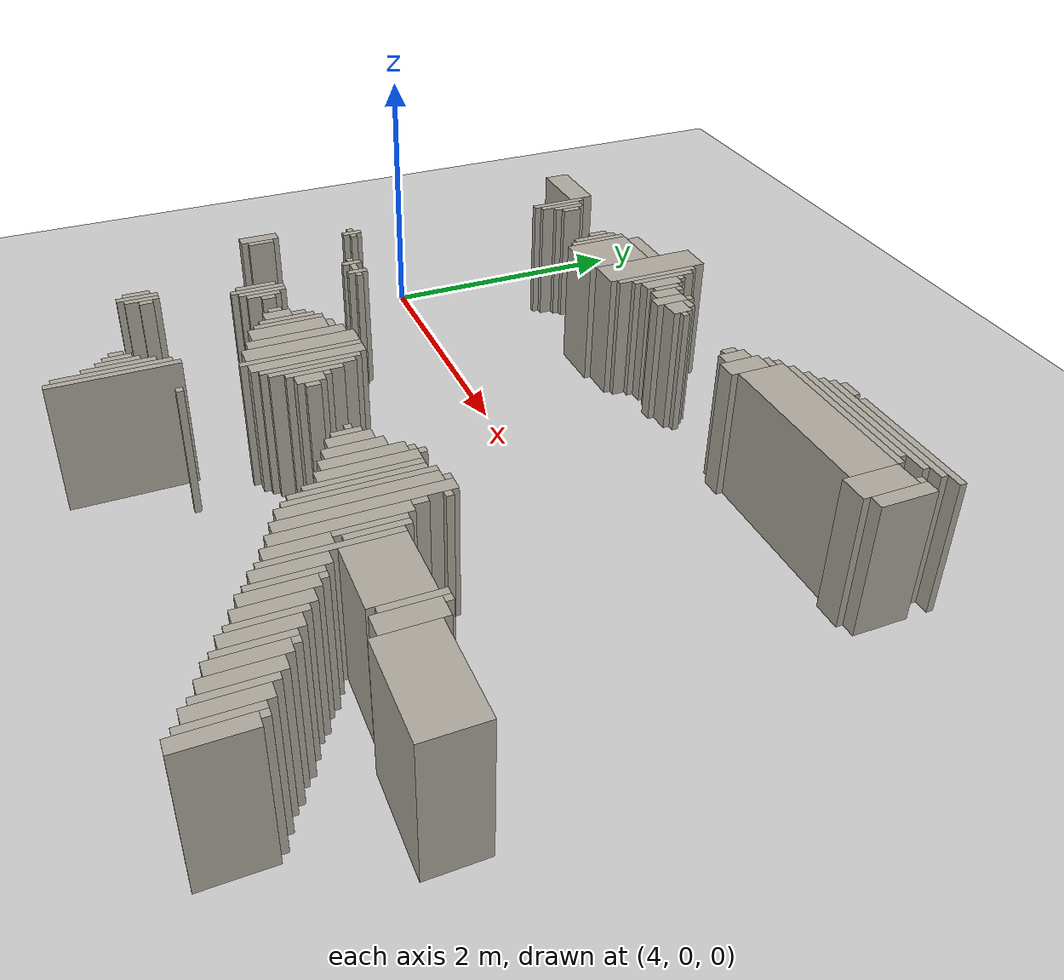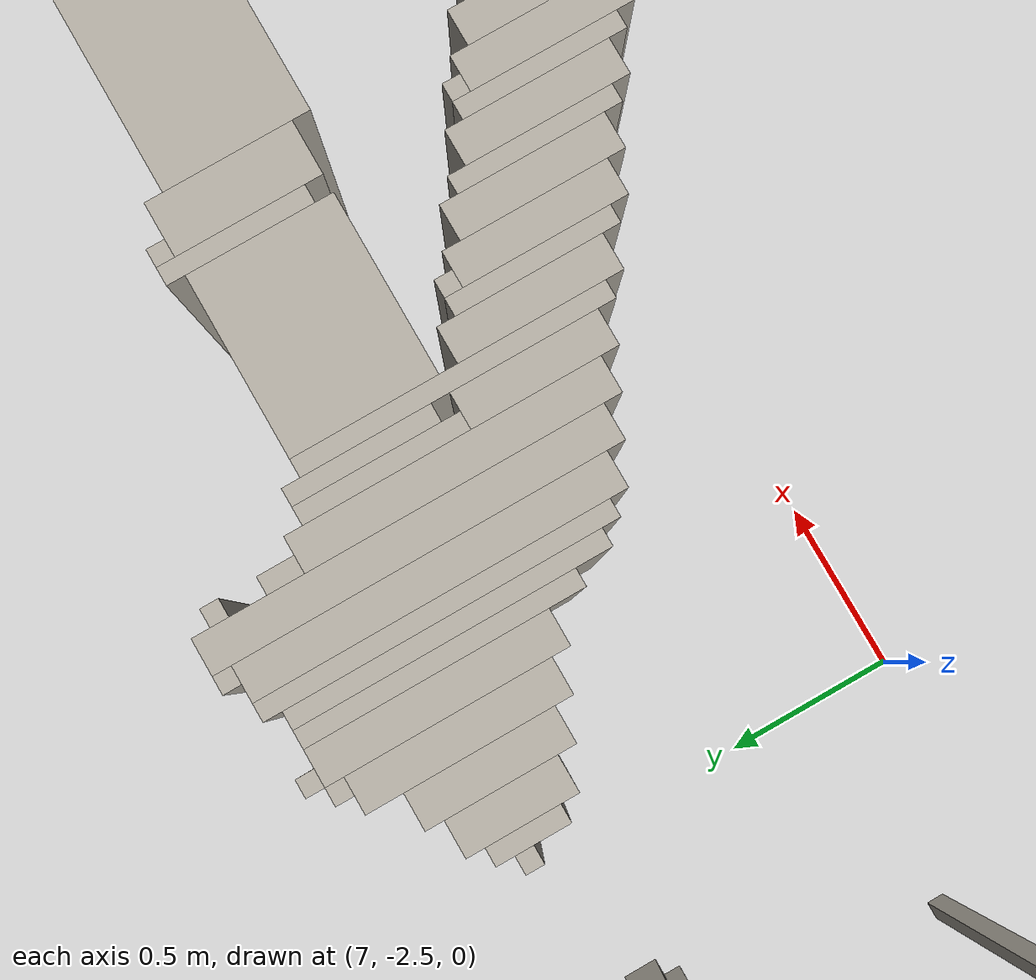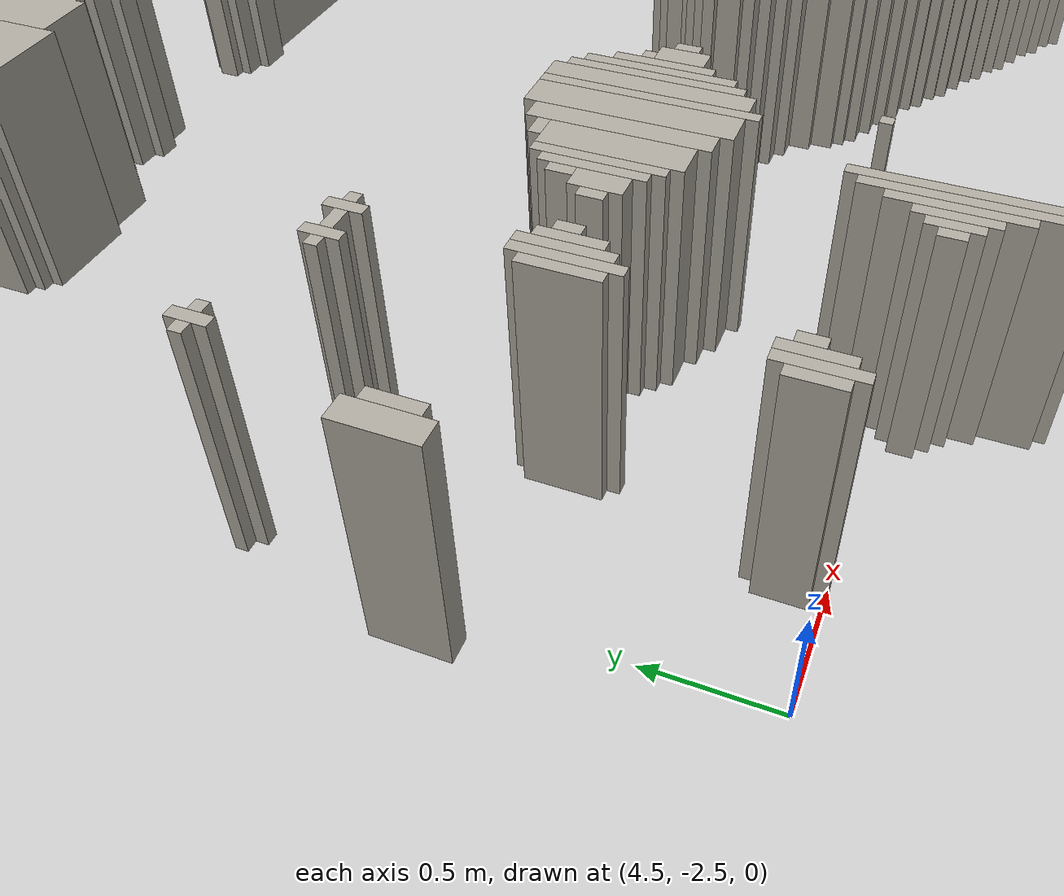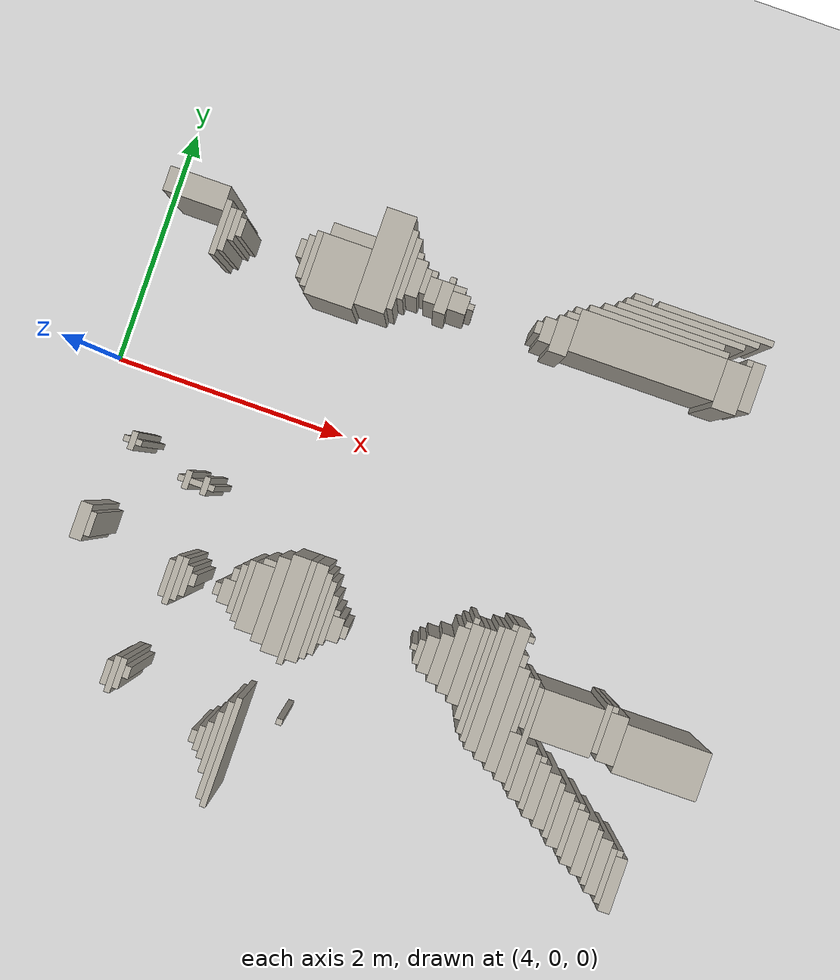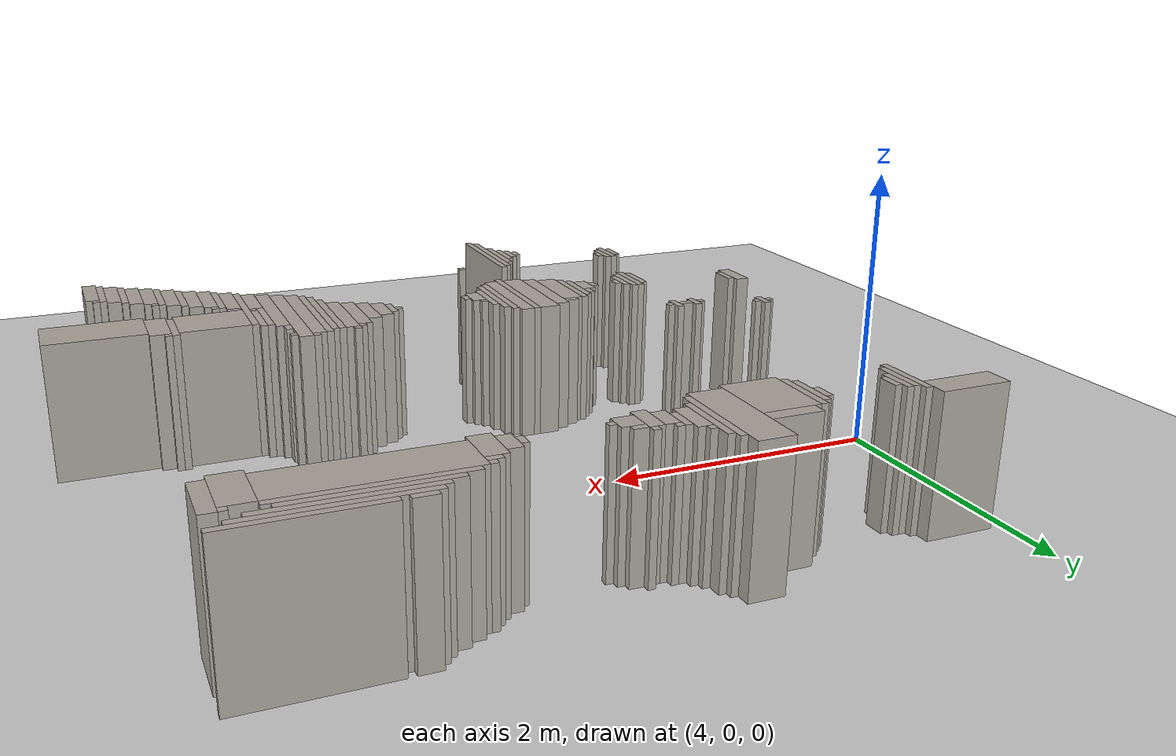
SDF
<sdf version="1.6">
 <world name="fr079_office">
  <include><uri>model://sun</uri></include>
  <include><uri>model://ground_plane</uri></include>
  <model name="fr079_office_walls">
   <static>true</static>
   <link name="w1134">
    <pose>5.977 -2.656 0.500 0 0 0</pose>
    <collision name="c"><geometry><box><size>0.050 0.900 1.000</size></box></geometry></collision>
    <visual name="v">
     <geometry><box><size>0.050 0.900 1.000</size></box></geometry>
     <material><ambient>0.68 0.66 0.62 1</ambient><diffuse>0.68 0.66 0.62 1</diffuse></material>
    </visual>
   </link>
   <link name="w1142">
    <pose>5.927 -2.656 0.500 0 0 0</pose>
    <collision name="c"><geometry><box><size>0.050 0.800 1.000</size></box></geometry></collision>
    <visual name="v">
     <geometry><box><size>0.050 0.800 1.000</size></box></geometry>
     <material><ambient>0.68 0.66 0.62 1</ambient><diffuse>0.68 0.66 0.62 1</diffuse></material>
    </visual>
   </link>
   <link name="w1194">
    <pose>5.877 -2.606 0.500 0 0 0</pose>
    <collision name="c"><geometry><box><size>0.050 0.500 1.000</size></box></geometry></collision>
    <visual name="v">
     <geometry><box><size>0.050 0.500 1.000</size></box></geometry>
     <material><ambient>0.68 0.66 0.62 1</ambient><diffuse>0.68 0.66 0.62 1</diffuse></material>
    </visual>
   </link>
   <link name="w1195">
    <pose>9.202 -2.631 0.500 0 0 0</pose>
    <collision name="c"><geometry><box><size>0.100 0.450 1.000</size></box></geometry></collision>
    <visual name="v">
     <geometry><box><size>0.100 0.450 1.000</size></box></geometry>
     <material><ambient>0.68 0.66 0.62 1</ambient><diffuse>0.68 0.66 0.62 1</diffuse></material>
    </visual>
   </link>
   <link name="w1204">
    <pose>9.127 -2.581 0.500 0 0 0</pose>
    <collision name="c"><geometry><box><size>0.050 0.450 1.000</size></box></geometry></collision>
    <visual name="v">
     <geometry><box><size>0.050 0.450 1.000</size></box></geometry>
     <material><ambient>0.68 0.66 0.62 1</ambient><diffuse>0.68 0.66 0.62 1</diffuse></material>
    </visual>
   </link>
   <link name="w1211">
    <pose>5.827 -2.606 0.500 0 0 0</pose>
    <collision name="c"><geometry><box><size>0.050 0.300 1.000</size></box></geometry></collision>
    <visual name="v">
     <geometry><box><size>0.050 0.300 1.000</size></box></geometry>
     <material><ambient>0.68 0.66 0.62 1</ambient><diffuse>0.68 0.66 0.62 1</diffuse></material>
    </visual>
   </link>
   <link name="w1212">
    <pose>9.052 -2.531 0.500 0 0 0</pose>
    <collision name="c"><geometry><box><size>0.100 0.450 1.000</size></box></geometry></collision>
    <visual name="v">
     <geometry><box><size>0.100 0.450 1.000</size></box></geometry>
     <material><ambient>0.68 0.66 0.62 1</ambient><diffuse>0.68 0.66 0.62 1</diffuse></material>
    </visual>
   </link>
   <link name="w1225">
    <pose>5.777 -2.606 0.500 0 0 0</pose>
    <collision name="c"><geometry><box><size>0.050 0.200 1.000</size></box></geometry></collision>
    <visual name="v">
     <geometry><box><size>0.050 0.200 1.000</size></box></geometry>
     <material><ambient>0.68 0.66 0.62 1</ambient><diffuse>0.68 0.66 0.62 1</diffuse></material>
    </visual>
   </link>
   <link name="w1226">
    <pose>8.977 -2.481 0.500 0 0 0</pose>
    <collision name="c"><geometry><box><size>0.050 0.450 1.000</size></box></geometry></collision>
    <visual name="v">
     <geometry><box><size>0.050 0.450 1.000</size></box></geometry>
     <material><ambient>0.68 0.66 0.62 1</ambient><diffuse>0.68 0.66 0.62 1</diffuse></material>
    </visual>
   </link>
   <link name="w1237">
    <pose>5.727 -2.606 0.500 0 0 0</pose>
    <collision name="c"><geometry><box><size>0.050 0.100 1.000</size></box></geometry></collision>
    <visual name="v">
     <geometry><box><size>0.050 0.100 1.000</size></box></geometry>
     <material><ambient>0.68 0.66 0.62 1</ambient><diffuse>0.68 0.66 0.62 1</diffuse></material>
    </visual>
   </link>
   <link name="w1238">
    <pose>8.902 -2.431 0.500 0 0 0</pose>
    <collision name="c"><geometry><box><size>0.100 0.450 1.000</size></box></geometry></collision>
    <visual name="v">
     <geometry><box><size>0.100 0.450 1.000</size></box></geometry>
     <material><ambient>0.68 0.66 0.62 1</ambient><diffuse>0.68 0.66 0.62 1</diffuse></material>
    </visual>
   </link>
   <link name="w1256">
    <pose>8.802 -2.381 0.500 0 0 0</pose>
    <collision name="c"><geometry><box><size>0.100 0.450 1.000</size></box></geometry></collision>
    <visual name="v">
     <geometry><box><size>0.100 0.450 1.000</size></box></geometry>
     <material><ambient>0.68 0.66 0.62 1</ambient><diffuse>0.68 0.66 0.62 1</diffuse></material>
    </visual>
   </link>
   <link name="w1275">
    <pose>8.727 -2.331 0.500 0 0 0</pose>
    <collision name="c"><geometry><box><size>0.050 0.450 1.000</size></box></geometry></collision>
    <visual name="v">
     <geometry><box><size>0.050 0.450 1.000</size></box></geometry>
     <material><ambient>0.68 0.66 0.62 1</ambient><diffuse>0.68 0.66 0.62 1</diffuse></material>
    </visual>
   </link>
   <link name="w1287">
    <pose>4.977 -2.356 0.500 0 0 0</pose>
    <collision name="c"><geometry><box><size>0.050 0.300 1.000</size></box></geometry></collision>
    <visual name="v">
     <geometry><box><size>0.050 0.300 1.000</size></box></geometry>
     <material><ambient>0.68 0.66 0.62 1</ambient><diffuse>0.68 0.66 0.62 1</diffuse></material>
    </visual>
   </link>
   <link name="w1288">
    <pose>8.652 -2.281 0.500 0 0 0</pose>
    <collision name="c"><geometry><box><size>0.100 0.450 1.000</size></box></geometry></collision>
    <visual name="v">
     <geometry><box><size>0.100 0.450 1.000</size></box></geometry>
     <material><ambient>0.68 0.66 0.62 1</ambient><diffuse>0.68 0.66 0.62 1</diffuse></material>
    </visual>
   </link>
   <link name="w1308">
    <pose>4.927 -2.356 0.500 0 0 0</pose>
    <collision name="c"><geometry><box><size>0.050 0.200 1.000</size></box></geometry></collision>
    <visual name="v">
     <geometry><box><size>0.050 0.200 1.000</size></box></geometry>
     <material><ambient>0.68 0.66 0.62 1</ambient><diffuse>0.68 0.66 0.62 1</diffuse></material>
    </visual>
   </link>
   <link name="w1309">
    <pose>5.027 -2.331 0.500 0 0 0</pose>
    <collision name="c"><geometry><box><size>0.050 0.250 1.000</size></box></geometry></collision>
    <visual name="v">
     <geometry><box><size>0.050 0.250 1.000</size></box></geometry>
     <material><ambient>0.68 0.66 0.62 1</ambient><diffuse>0.68 0.66 0.62 1</diffuse></material>
    </visual>
   </link>
   <link name="w1310">
    <pose>8.577 -2.231 0.500 0 0 0</pose>
    <collision name="c"><geometry><box><size>0.050 0.450 1.000</size></box></geometry></collision>
    <visual name="v">
     <geometry><box><size>0.050 0.450 1.000</size></box></geometry>
     <material><ambient>0.68 0.66 0.62 1</ambient><diffuse>0.68 0.66 0.62 1</diffuse></material>
    </visual>
   </link>
   <link name="w1325">
    <pose>8.502 -2.181 0.500 0 0 0</pose>
    <collision name="c"><geometry><box><size>0.100 0.450 1.000</size></box></geometry></collision>
    <visual name="v">
     <geometry><box><size>0.100 0.450 1.000</size></box></geometry>
     <material><ambient>0.68 0.66 0.62 1</ambient><diffuse>0.68 0.66 0.62 1</diffuse></material>
    </visual>
   </link>
   <link name="w1326">
    <pose>9.177 -2.381 0.500 0 0 0</pose>
    <collision name="c"><geometry><box><size>0.050 0.050 1.000</size></box></geometry></collision>
    <visual name="v">
     <geometry><box><size>0.050 0.050 1.000</size></box></geometry>
     <material><ambient>0.68 0.66 0.62 1</ambient><diffuse>0.68 0.66 0.62 1</diffuse></material>
    </visual>
   </link>
   <link name="w1341">
    <pose>5.077 -2.306 0.500 0 0 0</pose>
    <collision name="c"><geometry><box><size>0.050 0.100 1.000</size></box></geometry></collision>
    <visual name="v">
     <geometry><box><size>0.050 0.100 1.000</size></box></geometry>
     <material><ambient>0.68 0.66 0.62 1</ambient><diffuse>0.68 0.66 0.62 1</diffuse></material>
    </visual>
   </link>
   <link name="w1342">
    <pose>8.402 -2.131 0.500 0 0 0</pose>
    <collision name="c"><geometry><box><size>0.100 0.450 1.000</size></box></geometry></collision>
    <visual name="v">
     <geometry><box><size>0.100 0.450 1.000</size></box></geometry>
     <material><ambient>0.68 0.66 0.62 1</ambient><diffuse>0.68 0.66 0.62 1</diffuse></material>
    </visual>
   </link>
   <link name="w1357">
    <pose>6.327 -2.281 0.500 0 0 0</pose>
    <collision name="c"><geometry><box><size>0.050 0.050 1.000</size></box></geometry></collision>
    <visual name="v">
     <geometry><box><size>0.050 0.050 1.000</size></box></geometry>
     <material><ambient>0.68 0.66 0.62 1</ambient><diffuse>0.68 0.66 0.62 1</diffuse></material>
    </visual>
   </link>
   <link name="w1358">
    <pose>8.327 -2.081 0.500 0 0 0</pose>
    <collision name="c"><geometry><box><size>0.050 0.450 1.000</size></box></geometry></collision>
    <visual name="v">
     <geometry><box><size>0.050 0.450 1.000</size></box></geometry>
     <material><ambient>0.68 0.66 0.62 1</ambient><diffuse>0.68 0.66 0.62 1</diffuse></material>
    </visual>
   </link>
   <link name="w1379">
    <pose>8.252 -2.031 0.500 0 0 0</pose>
    <collision name="c"><geometry><box><size>0.100 0.450 1.000</size></box></geometry></collision>
    <visual name="v">
     <geometry><box><size>0.100 0.450 1.000</size></box></geometry>
     <material><ambient>0.68 0.66 0.62 1</ambient><diffuse>0.68 0.66 0.62 1</diffuse></material>
    </visual>
   </link>
   <link name="w1398">
    <pose>8.177 -1.781 0.500 0 0 0</pose>
    <collision name="c"><geometry><box><size>0.050 0.850 1.000</size></box></geometry></collision>
    <visual name="v">
     <geometry><box><size>0.050 0.850 1.000</size></box></geometry>
     <material><ambient>0.68 0.66 0.62 1</ambient><diffuse>0.68 0.66 0.62 1</diffuse></material>
    </visual>
   </link>
   <link name="w1415">
    <pose>8.102 -1.956 0.500 0 0 0</pose>
    <collision name="c"><geometry><box><size>0.100 0.400 1.000</size></box></geometry></collision>
    <visual name="v">
     <geometry><box><size>0.100 0.400 1.000</size></box></geometry>
     <material><ambient>0.68 0.66 0.62 1</ambient><diffuse>0.68 0.66 0.62 1</diffuse></material>
    </visual>
   </link>
   <link name="w1416">
    <pose>8.777 -2.131 0.500 0 0 0</pose>
    <collision name="c"><geometry><box><size>0.050 0.050 1.000</size></box></geometry></collision>
    <visual name="v">
     <geometry><box><size>0.050 0.050 1.000</size></box></geometry>
     <material><ambient>0.68 0.66 0.62 1</ambient><diffuse>0.68 0.66 0.62 1</diffuse></material>
    </visual>
   </link>
   <link name="w1430">
    <pose>8.002 -1.681 0.500 0 0 0</pose>
    <collision name="c"><geometry><box><size>0.100 0.850 1.000</size></box></geometry></collision>
    <visual name="v">
     <geometry><box><size>0.100 0.850 1.000</size></box></geometry>
     <material><ambient>0.68 0.66 0.62 1</ambient><diffuse>0.68 0.66 0.62 1</diffuse></material>
    </visual>
   </link>
   <link name="w1442">
    <pose>7.902 -1.506 0.500 0 0 0</pose>
    <collision name="c"><geometry><box><size>0.100 1.100 1.000</size></box></geometry></collision>
    <visual name="v">
     <geometry><box><size>0.100 1.100 1.000</size></box></geometry>
     <material><ambient>0.68 0.66 0.62 1</ambient><diffuse>0.68 0.66 0.62 1</diffuse></material>
    </visual>
   </link>
   <link name="w1459">
    <pose>7.802 -1.506 0.500 0 0 0</pose>
    <collision name="c"><geometry><box><size>0.100 1.000 1.000</size></box></geometry></collision>
    <visual name="v">
     <geometry><box><size>0.100 1.000 1.000</size></box></geometry>
     <material><ambient>0.68 0.66 0.62 1</ambient><diffuse>0.68 0.66 0.62 1</diffuse></material>
    </visual>
   </link>
   <link name="w1474">
    <pose>7.727 -1.481 0.500 0 0 0</pose>
    <collision name="c"><geometry><box><size>0.050 0.950 1.000</size></box></geometry></collision>
    <visual name="v">
     <geometry><box><size>0.050 0.950 1.000</size></box></geometry>
     <material><ambient>0.68 0.66 0.62 1</ambient><diffuse>0.68 0.66 0.62 1</diffuse></material>
    </visual>
   </link>
   <link name="w1493">
    <pose>7.677 -1.481 0.500 0 0 0</pose>
    <collision name="c"><geometry><box><size>0.050 0.850 1.000</size></box></geometry></collision>
    <visual name="v">
     <geometry><box><size>0.050 0.850 1.000</size></box></geometry>
     <material><ambient>0.68 0.66 0.62 1</ambient><diffuse>0.68 0.66 0.62 1</diffuse></material>
    </visual>
   </link>
   <link name="w1494">
    <pose>8.377 -1.881 0.500 0 0 0</pose>
    <collision name="c"><geometry><box><size>0.050 0.050 1.000</size></box></geometry></collision>
    <visual name="v">
     <geometry><box><size>0.050 0.050 1.000</size></box></geometry>
     <material><ambient>0.68 0.66 0.62 1</ambient><diffuse>0.68 0.66 0.62 1</diffuse></material>
    </visual>
   </link>
   <link name="w1509">
    <pose>6.177 -1.431 0.500 0 0 0</pose>
    <collision name="c"><geometry><box><size>0.050 0.850 1.000</size></box></geometry></collision>
    <visual name="v">
     <geometry><box><size>0.050 0.850 1.000</size></box></geometry>
     <material><ambient>0.68 0.66 0.62 1</ambient><diffuse>0.68 0.66 0.62 1</diffuse></material>
    </visual>
   </link>
   <link name="w1519">
    <pose>6.077 -1.406 0.500 0 0 0</pose>
    <collision name="c"><geometry><box><size>0.150 0.800 1.000</size></box></geometry></collision>
    <visual name="v">
     <geometry><box><size>0.150 0.800 1.000</size></box></geometry>
     <material><ambient>0.68 0.66 0.62 1</ambient><diffuse>0.68 0.66 0.62 1</diffuse></material>
    </visual>
   </link>
   <link name="w1520">
    <pose>6.252 -1.406 0.500 0 0 0</pose>
    <collision name="c"><geometry><box><size>0.100 0.800 1.000</size></box></geometry></collision>
    <visual name="v">
     <geometry><box><size>0.100 0.800 1.000</size></box></geometry>
     <material><ambient>0.68 0.66 0.62 1</ambient><diffuse>0.68 0.66 0.62 1</diffuse></material>
    </visual>
   </link>
   <link name="w1521">
    <pose>7.627 -1.431 0.500 0 0 0</pose>
    <collision name="c"><geometry><box><size>0.050 0.750 1.000</size></box></geometry></collision>
    <visual name="v">
     <geometry><box><size>0.050 0.750 1.000</size></box></geometry>
     <material><ambient>0.68 0.66 0.62 1</ambient><diffuse>0.68 0.66 0.62 1</diffuse></material>
    </visual>
   </link>
   <link name="w1522">
    <pose>9.252 -1.606 0.500 0 0 0</pose>
    <collision name="c"><geometry><box><size>0.700 0.400 1.000</size></box></geometry></collision>
    <visual name="v">
     <geometry><box><size>0.700 0.400 1.000</size></box></geometry>
     <material><ambient>0.68 0.66 0.62 1</ambient><diffuse>0.68 0.66 0.62 1</diffuse></material>
    </visual>
   </link>
   <link name="w1537">
    <pose>5.952 -1.406 0.500 0 0 0</pose>
    <collision name="c"><geometry><box><size>0.100 0.700 1.000</size></box></geometry></collision>
    <visual name="v">
     <geometry><box><size>0.100 0.700 1.000</size></box></geometry>
     <material><ambient>0.68 0.66 0.62 1</ambient><diffuse>0.68 0.66 0.62 1</diffuse></material>
    </visual>
   </link>
   <link name="w1538">
    <pose>6.327 -1.406 0.500 0 0 0</pose>
    <collision name="c"><geometry><box><size>0.050 0.700 1.000</size></box></geometry></collision>
    <visual name="v">
     <geometry><box><size>0.050 0.700 1.000</size></box></geometry>
     <material><ambient>0.68 0.66 0.62 1</ambient><diffuse>0.68 0.66 0.62 1</diffuse></material>
    </visual>
   </link>
   <link name="w1539">
    <pose>8.077 -1.531 0.500 0 0 0</pose>
    <collision name="c"><geometry><box><size>0.050 0.450 1.000</size></box></geometry></collision>
    <visual name="v">
     <geometry><box><size>0.050 0.450 1.000</size></box></geometry>
     <material><ambient>0.68 0.66 0.62 1</ambient><diffuse>0.68 0.66 0.62 1</diffuse></material>
    </visual>
   </link>
   <link name="w1540">
    <pose>8.452 -1.556 0.500 0 0 0</pose>
    <collision name="c"><geometry><box><size>0.500 0.400 1.000</size></box></geometry></collision>
    <visual name="v">
     <geometry><box><size>0.500 0.400 1.000</size></box></geometry>
     <material><ambient>0.68 0.66 0.62 1</ambient><diffuse>0.68 0.66 0.62 1</diffuse></material>
    </visual>
   </link>
   <link name="w1541">
    <pose>8.827 -1.556 0.500 0 0 0</pose>
    <collision name="c"><geometry><box><size>0.150 0.400 1.000</size></box></geometry></collision>
    <visual name="v">
     <geometry><box><size>0.150 0.400 1.000</size></box></geometry>
     <material><ambient>0.68 0.66 0.62 1</ambient><diffuse>0.68 0.66 0.62 1</diffuse></material>
    </visual>
   </link>
   <link name="w1557">
    <pose>5.177 -1.506 0.500 0 0 0</pose>
    <collision name="c"><geometry><box><size>0.050 0.400 1.000</size></box></geometry></collision>
    <visual name="v">
     <geometry><box><size>0.050 0.400 1.000</size></box></geometry>
     <material><ambient>0.68 0.66 0.62 1</ambient><diffuse>0.68 0.66 0.62 1</diffuse></material>
    </visual>
   </link>
   <link name="w1558">
    <pose>5.827 -1.431 0.500 0 0 0</pose>
    <collision name="c"><geometry><box><size>0.150 0.550 1.000</size></box></geometry></collision>
    <visual name="v">
     <geometry><box><size>0.150 0.550 1.000</size></box></geometry>
     <material><ambient>0.68 0.66 0.62 1</ambient><diffuse>0.68 0.66 0.62 1</diffuse></material>
    </visual>
   </link>
   <link name="w1559">
    <pose>6.377 -1.406 0.500 0 0 0</pose>
    <collision name="c"><geometry><box><size>0.050 0.600 1.000</size></box></geometry></collision>
    <visual name="v">
     <geometry><box><size>0.050 0.600 1.000</size></box></geometry>
     <material><ambient>0.68 0.66 0.62 1</ambient><diffuse>0.68 0.66 0.62 1</diffuse></material>
    </visual>
   </link>
   <link name="w1560">
    <pose>7.552 -1.381 0.500 0 0 0</pose>
    <collision name="c"><geometry><box><size>0.100 0.650 1.000</size></box></geometry></collision>
    <visual name="v">
     <geometry><box><size>0.100 0.650 1.000</size></box></geometry>
     <material><ambient>0.68 0.66 0.62 1</ambient><diffuse>0.68 0.66 0.62 1</diffuse></material>
    </visual>
   </link>
   <link name="w1561">
    <pose>8.127 -1.506 0.500 0 0 0</pose>
    <collision name="c"><geometry><box><size>0.050 0.400 1.000</size></box></geometry></collision>
    <visual name="v">
     <geometry><box><size>0.050 0.400 1.000</size></box></geometry>
     <material><ambient>0.68 0.66 0.62 1</ambient><diffuse>0.68 0.66 0.62 1</diffuse></material>
    </visual>
   </link>
   <link name="w1562">
    <pose>8.727 -1.506 0.500 0 0 0</pose>
    <collision name="c"><geometry><box><size>0.050 0.400 1.000</size></box></geometry></collision>
    <visual name="v">
     <geometry><box><size>0.050 0.400 1.000</size></box></geometry>
     <material><ambient>0.68 0.66 0.62 1</ambient><diffuse>0.68 0.66 0.62 1</diffuse></material>
    </visual>
   </link>
   <link name="w1585">
    <pose>5.127 -1.506 0.500 0 0 0</pose>
    <collision name="c"><geometry><box><size>0.050 0.300 1.000</size></box></geometry></collision>
    <visual name="v">
     <geometry><box><size>0.050 0.300 1.000</size></box></geometry>
     <material><ambient>0.68 0.66 0.62 1</ambient><diffuse>0.68 0.66 0.62 1</diffuse></material>
    </visual>
   </link>
   <link name="w1586">
    <pose>5.227 -1.481 0.500 0 0 0</pose>
    <collision name="c"><geometry><box><size>0.050 0.350 1.000</size></box></geometry></collision>
    <visual name="v">
     <geometry><box><size>0.050 0.350 1.000</size></box></geometry>
     <material><ambient>0.68 0.66 0.62 1</ambient><diffuse>0.68 0.66 0.62 1</diffuse></material>
    </visual>
   </link>
   <link name="w1587">
    <pose>5.727 -1.406 0.500 0 0 0</pose>
    <collision name="c"><geometry><box><size>0.050 0.500 1.000</size></box></geometry></collision>
    <visual name="v">
     <geometry><box><size>0.050 0.500 1.000</size></box></geometry>
     <material><ambient>0.68 0.66 0.62 1</ambient><diffuse>0.68 0.66 0.62 1</diffuse></material>
    </visual>
   </link>
   <link name="w1588">
    <pose>7.452 -1.381 0.500 0 0 0</pose>
    <collision name="c"><geometry><box><size>0.100 0.550 1.000</size></box></geometry></collision>
    <visual name="v">
     <geometry><box><size>0.100 0.550 1.000</size></box></geometry>
     <material><ambient>0.68 0.66 0.62 1</ambient><diffuse>0.68 0.66 0.62 1</diffuse></material>
    </visual>
   </link>
   <link name="w1617">
    <pose>5.277 -1.481 0.500 0 0 0</pose>
    <collision name="c"><geometry><box><size>0.050 0.250 1.000</size></box></geometry></collision>
    <visual name="v">
     <geometry><box><size>0.050 0.250 1.000</size></box></geometry>
     <material><ambient>0.68 0.66 0.62 1</ambient><diffuse>0.68 0.66 0.62 1</diffuse></material>
    </visual>
   </link>
   <link name="w1618">
    <pose>5.677 -1.406 0.500 0 0 0</pose>
    <collision name="c"><geometry><box><size>0.050 0.400 1.000</size></box></geometry></collision>
    <visual name="v">
     <geometry><box><size>0.050 0.400 1.000</size></box></geometry>
     <material><ambient>0.68 0.66 0.62 1</ambient><diffuse>0.68 0.66 0.62 1</diffuse></material>
    </visual>
   </link>
   <link name="w1619">
    <pose>6.427 -1.406 0.500 0 0 0</pose>
    <collision name="c"><geometry><box><size>0.050 0.400 1.000</size></box></geometry></collision>
    <visual name="v">
     <geometry><box><size>0.050 0.400 1.000</size></box></geometry>
     <material><ambient>0.68 0.66 0.62 1</ambient><diffuse>0.68 0.66 0.62 1</diffuse></material>
    </visual>
   </link>
   <link name="w1620">
    <pose>7.352 -1.406 0.500 0 0 0</pose>
    <collision name="c"><geometry><box><size>0.100 0.400 1.000</size></box></geometry></collision>
    <visual name="v">
     <geometry><box><size>0.100 0.400 1.000</size></box></geometry>
     <material><ambient>0.68 0.66 0.62 1</ambient><diffuse>0.68 0.66 0.62 1</diffuse></material>
    </visual>
   </link>
   <link name="w1647">
    <pose>5.602 -1.456 0.500 0 0 0</pose>
    <collision name="c"><geometry><box><size>0.100 0.200 1.000</size></box></geometry></collision>
    <visual name="v">
     <geometry><box><size>0.100 0.200 1.000</size></box></geometry>
     <material><ambient>0.68 0.66 0.62 1</ambient><diffuse>0.68 0.66 0.62 1</diffuse></material>
    </visual>
   </link>
   <link name="w1648">
    <pose>6.502 -1.456 0.500 0 0 0</pose>
    <collision name="c"><geometry><box><size>0.100 0.200 1.000</size></box></geometry></collision>
    <visual name="v">
     <geometry><box><size>0.100 0.200 1.000</size></box></geometry>
     <material><ambient>0.68 0.66 0.62 1</ambient><diffuse>0.68 0.66 0.62 1</diffuse></material>
    </visual>
   </link>
   <link name="w1649">
    <pose>7.252 -1.406 0.500 0 0 0</pose>
    <collision name="c"><geometry><box><size>0.100 0.300 1.000</size></box></geometry></collision>
    <visual name="v">
     <geometry><box><size>0.100 0.300 1.000</size></box></geometry>
     <material><ambient>0.68 0.66 0.62 1</ambient><diffuse>0.68 0.66 0.62 1</diffuse></material>
    </visual>
   </link>
   <link name="w1672">
    <pose>5.327 -1.456 0.500 0 0 0</pose>
    <collision name="c"><geometry><box><size>0.050 0.100 1.000</size></box></geometry></collision>
    <visual name="v">
     <geometry><box><size>0.050 0.100 1.000</size></box></geometry>
     <material><ambient>0.68 0.66 0.62 1</ambient><diffuse>0.68 0.66 0.62 1</diffuse></material>
    </visual>
   </link>
   <link name="w1673">
    <pose>5.527 -1.456 0.500 0 0 0</pose>
    <collision name="c"><geometry><box><size>0.050 0.100 1.000</size></box></geometry></collision>
    <visual name="v">
     <geometry><box><size>0.050 0.100 1.000</size></box></geometry>
     <material><ambient>0.68 0.66 0.62 1</ambient><diffuse>0.68 0.66 0.62 1</diffuse></material>
    </visual>
   </link>
   <link name="w1674">
    <pose>6.577 -1.456 0.500 0 0 0</pose>
    <collision name="c"><geometry><box><size>0.050 0.100 1.000</size></box></geometry></collision>
    <visual name="v">
     <geometry><box><size>0.050 0.100 1.000</size></box></geometry>
     <material><ambient>0.68 0.66 0.62 1</ambient><diffuse>0.68 0.66 0.62 1</diffuse></material>
    </visual>
   </link>
   <link name="w1675">
    <pose>7.177 -1.406 0.500 0 0 0</pose>
    <collision name="c"><geometry><box><size>0.050 0.200 1.000</size></box></geometry></collision>
    <visual name="v">
     <geometry><box><size>0.050 0.200 1.000</size></box></geometry>
     <material><ambient>0.68 0.66 0.62 1</ambient><diffuse>0.68 0.66 0.62 1</diffuse></material>
    </visual>
   </link>
   <link name="w1690">
    <pose>4.352 -1.306 0.500 0 0 0</pose>
    <collision name="c"><geometry><box><size>0.100 0.300 1.000</size></box></geometry></collision>
    <visual name="v">
     <geometry><box><size>0.100 0.300 1.000</size></box></geometry>
     <material><ambient>0.68 0.66 0.62 1</ambient><diffuse>0.68 0.66 0.62 1</diffuse></material>
    </visual>
   </link>
   <link name="w1697">
    <pose>4.427 -1.306 0.500 0 0 0</pose>
    <collision name="c"><geometry><box><size>0.050 0.200 1.000</size></box></geometry></collision>
    <visual name="v">
     <geometry><box><size>0.050 0.200 1.000</size></box></geometry>
     <material><ambient>0.68 0.66 0.62 1</ambient><diffuse>0.68 0.66 0.62 1</diffuse></material>
    </visual>
   </link>
   <link name="w1698">
    <pose>7.127 -1.381 0.500 0 0 0</pose>
    <collision name="c"><geometry><box><size>0.050 0.050 1.000</size></box></geometry></collision>
    <visual name="v">
     <geometry><box><size>0.050 0.050 1.000</size></box></geometry>
     <material><ambient>0.68 0.66 0.62 1</ambient><diffuse>0.68 0.66 0.62 1</diffuse></material>
    </visual>
   </link>
   <link name="w1716">
    <pose>5.627 -1.306 0.500 0 0 0</pose>
    <collision name="c"><geometry><box><size>0.050 0.100 1.000</size></box></geometry></collision>
    <visual name="v">
     <geometry><box><size>0.050 0.100 1.000</size></box></geometry>
     <material><ambient>0.68 0.66 0.62 1</ambient><diffuse>0.68 0.66 0.62 1</diffuse></material>
    </visual>
   </link>
   <link name="w1717">
    <pose>6.477 -1.331 0.500 0 0 0</pose>
    <collision name="c"><geometry><box><size>0.050 0.050 1.000</size></box></geometry></collision>
    <visual name="v">
     <geometry><box><size>0.050 0.050 1.000</size></box></geometry>
     <material><ambient>0.68 0.66 0.62 1</ambient><diffuse>0.68 0.66 0.62 1</diffuse></material>
    </visual>
   </link>
   <link name="w1718">
    <pose>8.777 -1.331 0.500 0 0 0</pose>
    <collision name="c"><geometry><box><size>0.050 0.050 1.000</size></box></geometry></collision>
    <visual name="v">
     <geometry><box><size>0.050 0.050 1.000</size></box></geometry>
     <material><ambient>0.68 0.66 0.62 1</ambient><diffuse>0.68 0.66 0.62 1</diffuse></material>
    </visual>
   </link>
   <link name="w1737">
    <pose>7.977 -1.206 0.500 0 0 0</pose>
    <collision name="c"><geometry><box><size>0.050 0.100 1.000</size></box></geometry></collision>
    <visual name="v">
     <geometry><box><size>0.050 0.100 1.000</size></box></geometry>
     <material><ambient>0.68 0.66 0.62 1</ambient><diffuse>0.68 0.66 0.62 1</diffuse></material>
    </visual>
   </link>
   <link name="w1752">
    <pose>5.852 -1.131 0.500 0 0 0</pose>
    <collision name="c"><geometry><box><size>0.100 0.050 1.000</size></box></geometry></collision>
    <visual name="v">
     <geometry><box><size>0.100 0.050 1.000</size></box></geometry>
     <material><ambient>0.68 0.66 0.62 1</ambient><diffuse>0.68 0.66 0.62 1</diffuse></material>
    </visual>
   </link>
   <link name="w1758">
    <pose>7.477 -1.081 0.500 0 0 0</pose>
    <collision name="c"><geometry><box><size>0.050 0.050 1.000</size></box></geometry></collision>
    <visual name="v">
     <geometry><box><size>0.050 0.050 1.000</size></box></geometry>
     <material><ambient>0.68 0.66 0.62 1</ambient><diffuse>0.68 0.66 0.62 1</diffuse></material>
    </visual>
   </link>
   <link name="w1761">
    <pose>7.527 -1.031 0.500 0 0 0</pose>
    <collision name="c"><geometry><box><size>0.050 0.050 1.000</size></box></geometry></collision>
    <visual name="v">
     <geometry><box><size>0.050 0.050 1.000</size></box></geometry>
     <material><ambient>0.68 0.66 0.62 1</ambient><diffuse>0.68 0.66 0.62 1</diffuse></material>
    </visual>
   </link>
   <link name="w1762">
    <pose>7.977 -1.031 0.500 0 0 0</pose>
    <collision name="c"><geometry><box><size>0.050 0.050 1.000</size></box></geometry></collision>
    <visual name="v">
     <geometry><box><size>0.050 0.050 1.000</size></box></geometry>
     <material><ambient>0.68 0.66 0.62 1</ambient><diffuse>0.68 0.66 0.62 1</diffuse></material>
    </visual>
   </link>
   <link name="w1768">
    <pose>7.827 -0.981 0.500 0 0 0</pose>
    <collision name="c"><geometry><box><size>0.050 0.050 1.000</size></box></geometry></collision>
    <visual name="v">
     <geometry><box><size>0.050 0.050 1.000</size></box></geometry>
     <material><ambient>0.68 0.66 0.62 1</ambient><diffuse>0.68 0.66 0.62 1</diffuse></material>
    </visual>
   </link>
   <link name="w1779">
    <pose>5.027 -0.731 0.500 0 0 0</pose>
    <collision name="c"><geometry><box><size>0.050 0.150 1.000</size></box></geometry></collision>
    <visual name="v">
     <geometry><box><size>0.050 0.150 1.000</size></box></geometry>
     <material><ambient>0.68 0.66 0.62 1</ambient><diffuse>0.68 0.66 0.62 1</diffuse></material>
    </visual>
   </link>
   <link name="w1780">
    <pose>5.177 -0.731 0.500 0 0 0</pose>
    <collision name="c"><geometry><box><size>0.050 0.150 1.000</size></box></geometry></collision>
    <visual name="v">
     <geometry><box><size>0.050 0.150 1.000</size></box></geometry>
     <material><ambient>0.68 0.66 0.62 1</ambient><diffuse>0.68 0.66 0.62 1</diffuse></material>
    </visual>
   </link>
   <link name="w1784">
    <pose>4.977 -0.731 0.500 0 0 0</pose>
    <collision name="c"><geometry><box><size>0.050 0.050 1.000</size></box></geometry></collision>
    <visual name="v">
     <geometry><box><size>0.050 0.050 1.000</size></box></geometry>
     <material><ambient>0.68 0.66 0.62 1</ambient><diffuse>0.68 0.66 0.62 1</diffuse></material>
    </visual>
   </link>
   <link name="w1785">
    <pose>5.102 -0.731 0.500 0 0 0</pose>
    <collision name="c"><geometry><box><size>0.100 0.050 1.000</size></box></geometry></collision>
    <visual name="v">
     <geometry><box><size>0.100 0.050 1.000</size></box></geometry>
     <material><ambient>0.68 0.66 0.62 1</ambient><diffuse>0.68 0.66 0.62 1</diffuse></material>
    </visual>
   </link>
   <link name="w1786">
    <pose>5.227 -0.731 0.500 0 0 0</pose>
    <collision name="c"><geometry><box><size>0.050 0.050 1.000</size></box></geometry></collision>
    <visual name="v">
     <geometry><box><size>0.050 0.050 1.000</size></box></geometry>
     <material><ambient>0.68 0.66 0.62 1</ambient><diffuse>0.68 0.66 0.62 1</diffuse></material>
    </visual>
   </link>
   <link name="w1791">
    <pose>4.527 -0.581 0.500 0 0 0</pose>
    <collision name="c"><geometry><box><size>0.050 0.150 1.000</size></box></geometry></collision>
    <visual name="v">
     <geometry><box><size>0.050 0.150 1.000</size></box></geometry>
     <material><ambient>0.68 0.66 0.62 1</ambient><diffuse>0.68 0.66 0.62 1</diffuse></material>
    </visual>
   </link>
   <link name="w1793">
    <pose>4.477 -0.581 0.500 0 0 0</pose>
    <collision name="c"><geometry><box><size>0.050 0.050 1.000</size></box></geometry></collision>
    <visual name="v">
     <geometry><box><size>0.050 0.050 1.000</size></box></geometry>
     <material><ambient>0.68 0.66 0.62 1</ambient><diffuse>0.68 0.66 0.62 1</diffuse></material>
    </visual>
   </link>
   <link name="w1794">
    <pose>4.577 -0.581 0.500 0 0 0</pose>
    <collision name="c"><geometry><box><size>0.050 0.050 1.000</size></box></geometry></collision>
    <visual name="v">
     <geometry><box><size>0.050 0.050 1.000</size></box></geometry>
     <material><ambient>0.68 0.66 0.62 1</ambient><diffuse>0.68 0.66 0.62 1</diffuse></material>
    </visual>
   </link>
   <link name="w1826">
    <pose>5.602 1.194 0.500 0 0 0</pose>
    <collision name="c"><geometry><box><size>0.400 0.500 1.000</size></box></geometry></collision>
    <visual name="v">
     <geometry><box><size>0.400 0.500 1.000</size></box></geometry>
     <material><ambient>0.68 0.66 0.62 1</ambient><diffuse>0.68 0.66 0.62 1</diffuse></material>
    </visual>
   </link>
   <link name="w1832">
    <pose>4.627 1.219 0.500 0 0 0</pose>
    <collision name="c"><geometry><box><size>0.050 0.450 1.000</size></box></geometry></collision>
    <visual name="v">
     <geometry><box><size>0.050 0.450 1.000</size></box></geometry>
     <material><ambient>0.68 0.66 0.62 1</ambient><diffuse>0.68 0.66 0.62 1</diffuse></material>
    </visual>
   </link>
   <link name="w1833">
    <pose>5.377 1.219 0.500 0 0 0</pose>
    <collision name="c"><geometry><box><size>0.050 0.450 1.000</size></box></geometry></collision>
    <visual name="v">
     <geometry><box><size>0.050 0.450 1.000</size></box></geometry>
     <material><ambient>0.68 0.66 0.62 1</ambient><diffuse>0.68 0.66 0.62 1</diffuse></material>
    </visual>
   </link>
   <link name="w1834">
    <pose>5.927 1.394 0.500 0 0 0</pose>
    <collision name="c"><geometry><box><size>0.250 0.800 1.000</size></box></geometry></collision>
    <visual name="v">
     <geometry><box><size>0.250 0.800 1.000</size></box></geometry>
     <material><ambient>0.68 0.66 0.62 1</ambient><diffuse>0.68 0.66 0.62 1</diffuse></material>
    </visual>
   </link>
   <link name="w1847">
    <pose>4.677 1.219 0.500 0 0 0</pose>
    <collision name="c"><geometry><box><size>0.050 0.350 1.000</size></box></geometry></collision>
    <visual name="v">
     <geometry><box><size>0.050 0.350 1.000</size></box></geometry>
     <material><ambient>0.68 0.66 0.62 1</ambient><diffuse>0.68 0.66 0.62 1</diffuse></material>
    </visual>
   </link>
   <link name="w1848">
    <pose>5.327 1.219 0.500 0 0 0</pose>
    <collision name="c"><geometry><box><size>0.050 0.350 1.000</size></box></geometry></collision>
    <visual name="v">
     <geometry><box><size>0.050 0.350 1.000</size></box></geometry>
     <material><ambient>0.68 0.66 0.62 1</ambient><diffuse>0.68 0.66 0.62 1</diffuse></material>
    </visual>
   </link>
   <link name="w1849">
    <pose>6.077 1.369 0.500 0 0 0</pose>
    <collision name="c"><geometry><box><size>0.050 0.650 1.000</size></box></geometry></collision>
    <visual name="v">
     <geometry><box><size>0.050 0.650 1.000</size></box></geometry>
     <material><ambient>0.68 0.66 0.62 1</ambient><diffuse>0.68 0.66 0.62 1</diffuse></material>
    </visual>
   </link>
   <link name="w1892">
    <pose>4.727 1.269 0.500 0 0 0</pose>
    <collision name="c"><geometry><box><size>0.050 0.250 1.000</size></box></geometry></collision>
    <visual name="v">
     <geometry><box><size>0.050 0.250 1.000</size></box></geometry>
     <material><ambient>0.68 0.66 0.62 1</ambient><diffuse>0.68 0.66 0.62 1</diffuse></material>
    </visual>
   </link>
   <link name="w1893">
    <pose>6.127 1.394 0.500 0 0 0</pose>
    <collision name="c"><geometry><box><size>0.050 0.500 1.000</size></box></geometry></collision>
    <visual name="v">
     <geometry><box><size>0.050 0.500 1.000</size></box></geometry>
     <material><ambient>0.68 0.66 0.62 1</ambient><diffuse>0.68 0.66 0.62 1</diffuse></material>
    </visual>
   </link>
   <link name="w1894">
    <pose>6.452 1.269 0.500 0 0 0</pose>
    <collision name="c"><geometry><box><size>0.100 0.250 1.000</size></box></geometry></collision>
    <visual name="v">
     <geometry><box><size>0.100 0.250 1.000</size></box></geometry>
     <material><ambient>0.68 0.66 0.62 1</ambient><diffuse>0.68 0.66 0.62 1</diffuse></material>
    </visual>
   </link>
   <link name="w1895">
    <pose>7.427 1.294 0.500 0 0 0</pose>
    <collision name="c"><geometry><box><size>0.150 0.300 1.000</size></box></geometry></collision>
    <visual name="v">
     <geometry><box><size>0.150 0.300 1.000</size></box></geometry>
     <material><ambient>0.68 0.66 0.62 1</ambient><diffuse>0.68 0.66 0.62 1</diffuse></material>
    </visual>
   </link>
   <link name="w1896">
    <pose>8.802 1.344 0.500 0 0 0</pose>
    <collision name="c"><geometry><box><size>0.200 0.400 1.000</size></box></geometry></collision>
    <visual name="v">
     <geometry><box><size>0.200 0.400 1.000</size></box></geometry>
     <material><ambient>0.68 0.66 0.62 1</ambient><diffuse>0.68 0.66 0.62 1</diffuse></material>
    </visual>
   </link>
   <link name="w1922">
    <pose>4.777 1.269 0.500 0 0 0</pose>
    <collision name="c"><geometry><box><size>0.050 0.150 1.000</size></box></geometry></collision>
    <visual name="v">
     <geometry><box><size>0.050 0.150 1.000</size></box></geometry>
     <material><ambient>0.68 0.66 0.62 1</ambient><diffuse>0.68 0.66 0.62 1</diffuse></material>
    </visual>
   </link>
   <link name="w1923">
    <pose>5.277 1.269 0.500 0 0 0</pose>
    <collision name="c"><geometry><box><size>0.050 0.150 1.000</size></box></geometry></collision>
    <visual name="v">
     <geometry><box><size>0.050 0.150 1.000</size></box></geometry>
     <material><ambient>0.68 0.66 0.62 1</ambient><diffuse>0.68 0.66 0.62 1</diffuse></material>
    </visual>
   </link>
   <link name="w1924">
    <pose>6.202 1.344 0.500 0 0 0</pose>
    <collision name="c"><geometry><box><size>0.100 0.300 1.000</size></box></geometry></collision>
    <visual name="v">
     <geometry><box><size>0.100 0.300 1.000</size></box></geometry>
     <material><ambient>0.68 0.66 0.62 1</ambient><diffuse>0.68 0.66 0.62 1</diffuse></material>
    </visual>
   </link>
   <link name="w1925">
    <pose>6.352 1.294 0.500 0 0 0</pose>
    <collision name="c"><geometry><box><size>0.100 0.200 1.000</size></box></geometry></collision>
    <visual name="v">
     <geometry><box><size>0.100 0.200 1.000</size></box></geometry>
     <material><ambient>0.68 0.66 0.62 1</ambient><diffuse>0.68 0.66 0.62 1</diffuse></material>
    </visual>
   </link>
   <link name="w1926">
    <pose>6.577 1.269 0.500 0 0 0</pose>
    <collision name="c"><geometry><box><size>0.150 0.150 1.000</size></box></geometry></collision>
    <visual name="v">
     <geometry><box><size>0.150 0.150 1.000</size></box></geometry>
     <material><ambient>0.68 0.66 0.62 1</ambient><diffuse>0.68 0.66 0.62 1</diffuse></material>
    </visual>
   </link>
   <link name="w1927">
    <pose>7.302 1.294 0.500 0 0 0</pose>
    <collision name="c"><geometry><box><size>0.100 0.200 1.000</size></box></geometry></collision>
    <visual name="v">
     <geometry><box><size>0.100 0.200 1.000</size></box></geometry>
     <material><ambient>0.68 0.66 0.62 1</ambient><diffuse>0.68 0.66 0.62 1</diffuse></material>
    </visual>
   </link>
   <link name="w1928">
    <pose>8.102 1.369 0.500 0 0 0</pose>
    <collision name="c"><geometry><box><size>1.200 0.350 1.000</size></box></geometry></collision>
    <visual name="v">
     <geometry><box><size>1.200 0.350 1.000</size></box></geometry>
     <material><ambient>0.68 0.66 0.62 1</ambient><diffuse>0.68 0.66 0.62 1</diffuse></material>
    </visual>
   </link>
   <link name="w1929">
    <pose>8.952 1.394 0.500 0 0 0</pose>
    <collision name="c"><geometry><box><size>0.100 0.400 1.000</size></box></geometry></collision>
    <visual name="v">
     <geometry><box><size>0.100 0.400 1.000</size></box></geometry>
     <material><ambient>0.68 0.66 0.62 1</ambient><diffuse>0.68 0.66 0.62 1</diffuse></material>
    </visual>
   </link>
   <link name="w1950">
    <pose>6.277 1.344 0.500 0 0 0</pose>
    <collision name="c"><geometry><box><size>0.050 0.200 1.000</size></box></geometry></collision>
    <visual name="v">
     <geometry><box><size>0.050 0.200 1.000</size></box></geometry>
     <material><ambient>0.68 0.66 0.62 1</ambient><diffuse>0.68 0.66 0.62 1</diffuse></material>
    </visual>
   </link>
   <link name="w1951">
    <pose>6.677 1.269 0.500 0 0 0</pose>
    <collision name="c"><geometry><box><size>0.050 0.050 1.000</size></box></geometry></collision>
    <visual name="v">
     <geometry><box><size>0.050 0.050 1.000</size></box></geometry>
     <material><ambient>0.68 0.66 0.62 1</ambient><diffuse>0.68 0.66 0.62 1</diffuse></material>
    </visual>
   </link>
   <link name="w1952">
    <pose>7.227 1.294 0.500 0 0 0</pose>
    <collision name="c"><geometry><box><size>0.050 0.100 1.000</size></box></geometry></collision>
    <visual name="v">
     <geometry><box><size>0.050 0.100 1.000</size></box></geometry>
     <material><ambient>0.68 0.66 0.62 1</ambient><diffuse>0.68 0.66 0.62 1</diffuse></material>
    </visual>
   </link>
   <link name="w1982">
    <pose>4.352 1.444 0.500 0 0 0</pose>
    <collision name="c"><geometry><box><size>0.500 0.200 1.000</size></box></geometry></collision>
    <visual name="v">
     <geometry><box><size>0.500 0.200 1.000</size></box></geometry>
     <material><ambient>0.68 0.66 0.62 1</ambient><diffuse>0.68 0.66 0.62 1</diffuse></material>
    </visual>
   </link>
   <link name="w1983">
    <pose>6.552 1.369 0.500 0 0 0</pose>
    <collision name="c"><geometry><box><size>0.100 0.050 1.000</size></box></geometry></collision>
    <visual name="v">
     <geometry><box><size>0.100 0.050 1.000</size></box></geometry>
     <material><ambient>0.68 0.66 0.62 1</ambient><diffuse>0.68 0.66 0.62 1</diffuse></material>
    </visual>
   </link>
   <link name="w1994">
    <pose>6.327 1.419 0.500 0 0 0</pose>
    <collision name="c"><geometry><box><size>0.050 0.050 1.000</size></box></geometry></collision>
    <visual name="v">
     <geometry><box><size>0.050 0.050 1.000</size></box></geometry>
     <material><ambient>0.68 0.66 0.62 1</ambient><diffuse>0.68 0.66 0.62 1</diffuse></material>
    </visual>
   </link>
   <link name="w1995">
    <pose>6.477 1.419 0.500 0 0 0</pose>
    <collision name="c"><geometry><box><size>0.050 0.050 1.000</size></box></geometry></collision>
    <visual name="v">
     <geometry><box><size>0.050 0.050 1.000</size></box></geometry>
     <material><ambient>0.68 0.66 0.62 1</ambient><diffuse>0.68 0.66 0.62 1</diffuse></material>
    </visual>
   </link>
   <link name="w2013">
    <pose>5.627 1.494 0.500 0 0 0</pose>
    <collision name="c"><geometry><box><size>0.350 0.100 1.000</size></box></geometry></collision>
    <visual name="v">
     <geometry><box><size>0.350 0.100 1.000</size></box></geometry>
     <material><ambient>0.68 0.66 0.62 1</ambient><diffuse>0.68 0.66 0.62 1</diffuse></material>
    </visual>
   </link>
   <link name="w2014">
    <pose>7.452 1.469 0.500 0 0 0</pose>
    <collision name="c"><geometry><box><size>0.100 0.050 1.000</size></box></geometry></collision>
    <visual name="v">
     <geometry><box><size>0.100 0.050 1.000</size></box></geometry>
     <material><ambient>0.68 0.66 0.62 1</ambient><diffuse>0.68 0.66 0.62 1</diffuse></material>
    </visual>
   </link>
   <link name="w2030">
    <pose>6.177 1.519 0.500 0 0 0</pose>
    <collision name="c"><geometry><box><size>0.050 0.050 1.000</size></box></geometry></collision>
    <visual name="v">
     <geometry><box><size>0.050 0.050 1.000</size></box></geometry>
     <material><ambient>0.68 0.66 0.62 1</ambient><diffuse>0.68 0.66 0.62 1</diffuse></material>
    </visual>
   </link>
   <link name="w2031">
    <pose>7.477 1.519 0.500 0 0 0</pose>
    <collision name="c"><geometry><box><size>0.050 0.050 1.000</size></box></geometry></collision>
    <visual name="v">
     <geometry><box><size>0.050 0.050 1.000</size></box></geometry>
     <material><ambient>0.68 0.66 0.62 1</ambient><diffuse>0.68 0.66 0.62 1</diffuse></material>
    </visual>
   </link>
   <link name="w2048">
    <pose>8.127 1.569 0.500 0 0 0</pose>
    <collision name="c"><geometry><box><size>1.150 0.050 1.000</size></box></geometry></collision>
    <visual name="v">
     <geometry><box><size>1.150 0.050 1.000</size></box></geometry>
     <material><ambient>0.68 0.66 0.62 1</ambient><diffuse>0.68 0.66 0.62 1</diffuse></material>
    </visual>
   </link>
   <link name="w2049">
    <pose>8.877 1.569 0.500 0 0 0</pose>
    <collision name="c"><geometry><box><size>0.050 0.050 1.000</size></box></geometry></collision>
    <visual name="v">
     <geometry><box><size>0.050 0.050 1.000</size></box></geometry>
     <material><ambient>0.68 0.66 0.62 1</ambient><diffuse>0.68 0.66 0.62 1</diffuse></material>
    </visual>
   </link>
   <link name="w2062">
    <pose>8.152 1.619 0.500 0 0 0</pose>
    <collision name="c"><geometry><box><size>1.000 0.050 1.000</size></box></geometry></collision>
    <visual name="v">
     <geometry><box><size>1.000 0.050 1.000</size></box></geometry>
     <material><ambient>0.68 0.66 0.62 1</ambient><diffuse>0.68 0.66 0.62 1</diffuse></material>
    </visual>
   </link>
   <link name="w2075">
    <pose>8.277 1.669 0.500 0 0 0</pose>
    <collision name="c"><geometry><box><size>1.050 0.050 1.000</size></box></geometry></collision>
    <visual name="v">
     <geometry><box><size>1.050 0.050 1.000</size></box></geometry>
     <material><ambient>0.68 0.66 0.62 1</ambient><diffuse>0.68 0.66 0.62 1</diffuse></material>
    </visual>
   </link>
   <link name="w2088">
    <pose>8.352 1.719 0.500 0 0 0</pose>
    <collision name="c"><geometry><box><size>1.100 0.050 1.000</size></box></geometry></collision>
    <visual name="v">
     <geometry><box><size>1.100 0.050 1.000</size></box></geometry>
     <material><ambient>0.68 0.66 0.62 1</ambient><diffuse>0.68 0.66 0.62 1</diffuse></material>
    </visual>
   </link>
   <link name="w2100">
    <pose>7.927 1.769 0.500 0 0 0</pose>
    <collision name="c"><geometry><box><size>0.150 0.050 1.000</size></box></geometry></collision>
    <visual name="v">
     <geometry><box><size>0.150 0.050 1.000</size></box></geometry>
     <material><ambient>0.68 0.66 0.62 1</ambient><diffuse>0.68 0.66 0.62 1</diffuse></material>
    </visual>
   </link>
   <link name="w2101">
    <pose>8.527 1.769 0.500 0 0 0</pose>
    <collision name="c"><geometry><box><size>0.950 0.050 1.000</size></box></geometry></collision>
    <visual name="v">
     <geometry><box><size>0.950 0.050 1.000</size></box></geometry>
     <material><ambient>0.68 0.66 0.62 1</ambient><diffuse>0.68 0.66 0.62 1</diffuse></material>
    </visual>
   </link>
  </model>
 </world>
</sdf>
